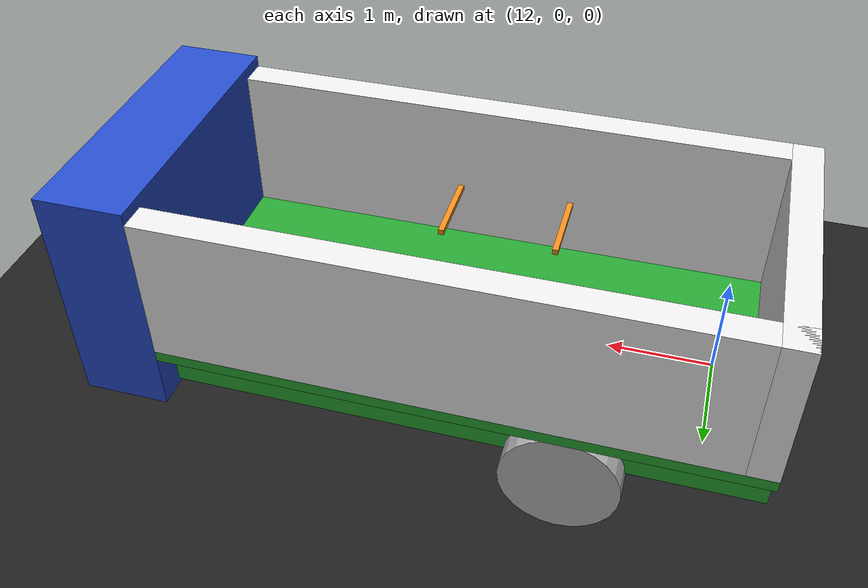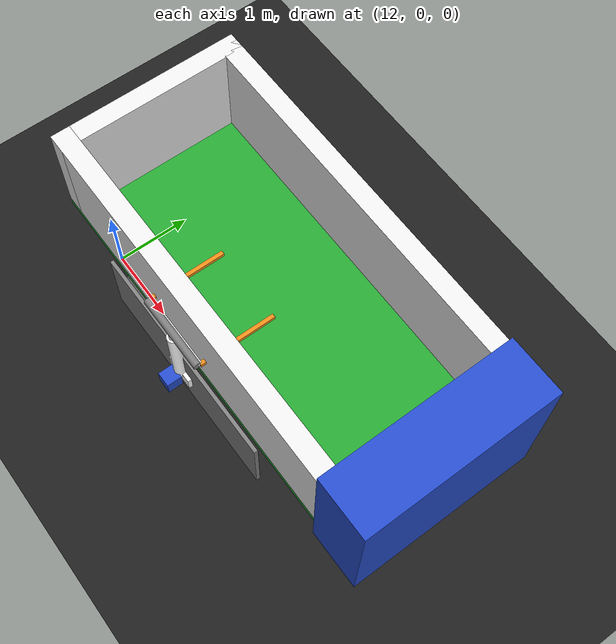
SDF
<sdf version="1.10">
 <world name="gazebo_world">
  <physics name="1ms" type="ignored">
   <max_step_size>0.001</max_step_size>
   <real_time_factor>1.0</real_time_factor>
  </physics>
  <plugin filename="gz-sim-physics-system" name="gz::sim::systems::Physics"/>
  <plugin filename="gz-sim-sensors-system" name="gz::sim::systems::Sensors">
   <render_engine>ogre2</render_engine>
  </plugin>
  <plugin filename="gz-sim-user-commands-system" name="gz::sim::systems::UserCommands"/>
  <plugin filename="gz-sim-scene-broadcaster-system" name="gz::sim::systems::SceneBroadcaster"/>
  <spherical_coordinates>
   <surface_model>EARTH_WGS84</surface_model>
   <world_frame_orientation>ENU</world_frame_orientation>
   <latitude_deg>-22.986687</latitude_deg>
   <longitude_deg>-43.202501</longitude_deg>
   <elevation>0</elevation>
   <heading_deg>0</heading_deg>
  </spherical_coordinates>
  <model name="ground_plane">
   <static>true</static>
   <link name="road">
    <pose>21.5 -6 0 0 0 0</pose>
    <collision name="road_collision"><geometry><plane><normal>0 0 1</normal></plane></geometry></collision>
    <visual name="road_visual">
     <geometry><plane><normal>0 0 1</normal><size>49 38</size></plane></geometry>
     <material>
      <script><uri>file://media/materials/scripts/gazebo.material</uri><name>Gazebo/Black</name></script>
     </material>
    </visual>
   </link>
   <link name="main_concrete">
    <pose>22.5 -9.5 0 0 0 0</pose>
    <collision name="main_concrete_collision"><geometry><box><size>29 15 0.1</size></box></geometry></collision>
    <visual name="main_concrete_visual">
     <geometry><box><size>29 15 0.1</size></box></geometry>
     <material>
      <script><uri>file://media/materials/scripts/gazebo.material</uri><name>Gazebo/Gray</name></script>
     </material>
    </visual>
   </link>
   <link name="left_concrete">
    <pose>21.5 9.5 0 0 0 0</pose>
    <collision name="left_concrete_collision"><geometry><box><size>49 7 0.1</size></box></geometry></collision>
    <visual name="left_concrete_visual">
     <geometry><box><size>49 7 0.1</size></box></geometry>
     <material>
      <script><uri>file://media/materials/scripts/gazebo.material</uri><name>Gazebo/Gray</name></script>
     </material>
    </visual>
   </link>
   <link name="bottom_concrete">
    <pose>-1.5 -15 0 0 0 0</pose>
    <collision name="bottom_concrete_collision"><geometry><box><size>3 26 0.1</size></box></geometry></collision>
    <visual name="bottom_concrete_visual">
     <geometry><box><size>3 26 0.1</size></box></geometry>
     <material>
      <script><uri>file://media/materials/scripts/gazebo.material</uri><name>Gazebo/Gray</name></script>
     </material>
    </visual>
   </link>
  </model>
  <include><uri>model://garbage_truck</uri><pose>14 1 0 0 0 0</pose></include>
  <plugin filename="gz-sim-triggered-publisher-system" name="gz::sim::systems::TriggeredPublisher">
   <input type="gz.msgs.Int32" topic="/keyboard/keypress"><match field="data">16777235</match></input>
   <output type="gz.msgs.Twist" topic="/cmd_vel">linear: {x: 5.0}, angular: {z: 0.0}</output>
  </plugin>
  <plugin filename="gz-sim-triggered-publisher-system" name="gz::sim::systems::TriggeredPublisher">
   <input type="gz.msgs.Int32" topic="/keyboard/keypress"><match field="data">16777237</match></input>
   <output type="gz.msgs.Twist" topic="/cmd_vel">linear: {x: -5.0}, angular: {z: 0.0}</output>
  </plugin>
  <plugin filename="gz-sim-triggered-publisher-system" name="gz::sim::systems::TriggeredPublisher">
   <input type="gz.msgs.Int32" topic="/keyboard/keypress"><match field="data">16777236</match></input>
   <output type="gz.msgs.Twist" topic="/cmd_vel">linear: {x: 0.0}, angular: {z: -5.0}</output>
  </plugin>
  <plugin filename="gz-sim-triggered-publisher-system" name="gz::sim::systems::TriggeredPublisher">
   <input type="gz.msgs.Int32" topic="/keyboard/keypress"><match field="data">16777234</match></input>
   <output type="gz.msgs.Twist" topic="/cmd_vel">linear: {x: 0.0}, angular: {z: 5.0}</output>
  </plugin>
  <plugin filename="gz-sim-triggered-publisher-system" name="gz::sim::systems::TriggeredPublisher">
   <input type="gz.msgs.Int32" topic="/keyboard/keypress"><match field="data">83</match></input>
   <output type="gz.msgs.Twist" topic="/cmd_vel">linear: {x: 0.0}, angular: {z: 0.0}</output>
  </plugin>
 </world>
</sdf>

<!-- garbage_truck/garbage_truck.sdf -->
<sdf version="1.10">

  <model name="garbage_truck">
    <static>false</static>

    <include>
            <uri>model://garbagebot_arm</uri>
            <pose>0 -1.3 0.5 0 0 3.14159</pose>  <!-- x y z roll pitch yaw -->
    </include>

    <joint name='right_to_garbagebot_arm_base_link' type='fixed'>
        <pose relative_to='right'>0 0 0 0 0 0</pose>
        <parent>right</parent>
        <child>garbagebot_arm::base_link</child>
    </joint>

    <!-- Chassis -->
    <link name="chassis">
      <pose>0 0 0.8 0 0 0</pose>
      <inertial>
        <mass>1000</mass>
        <inertia>
          <ixx>500</ixx> <iyy>1200</iyy> <izz>1000</izz>
          <ixy>0</ixy> <ixz>0</ixz> <iyz>0</iyz>
        </inertia>
      </inertial>
      <collision name="chassis_collision">
        <geometry>
          <box>
            <size>5 2 0.6</size>
          </box>
        </geometry>
      </collision>
      <visual name="chassis_visual">
        <geometry>
          <box>
            <size>5 2 0.5</size>
          </box>
        </geometry>
        <material>
          <script>
            <uri>file://media/materials/scripts/gazebo.material</uri>
            <name>Gazebo/Green</name>
          </script>
        </material>
      </visual>

      <!-- IMU Sensor -->
      <sensor name="imu_sensor" type="imu">
        <always_on>1</always_on>
        <update_rate>50</update_rate>
        <visualize>true</visualize>
        <topic>imu</topic>
      </sensor>

      <!-- GPS Sensor -->
      <sensor name="gps_sensor" type="navsat">
        <always_on>true</always_on>
        <update_rate>50</update_rate>
        <topic>gps</topic>
      </sensor>

    </link>

    <!-- Car Structure -->
    <link name="front">
      <pose>2.875 0 1.5 0 0 0</pose>
      <inertial>
        <mass>1</mass>
        <inertia>
          <ixx>500</ixx> <iyy>1200</iyy> <izz>1000</izz>
          <ixy>0</ixy> <ixz>0</ixz> <iyz>0</iyz>
        </inertia>
      </inertial>
      <collision name="front_collision">
        <geometry>
          <box>
            <size> 0.75 2.5 2</size>
          </box>
        </geometry>
      </collision>
      <visual name="front_visual">
        <geometry>
          <box>
            <size> 0.75 2.5 2</size>
          </box>
        </geometry>
        <material>
          <script>
            <uri>file://media/materials/scripts/gazebo.material</uri>
            <name>Gazebo/Blue</name>
          </script>
        </material>
      </visual>
    </link>

    <joint name="joint_front_and_chasis" type="fixed">
      <parent>chassis</parent>
      <child>front</child>
    </joint>

    <link name="bottom">
      <pose> 0 0 1.05 0 0 0</pose>
      <inertial>
        <mass>1</mass>
        <inertia>
          <ixx>500</ixx> <iyy>1200</iyy> <izz>1000</izz>
          <ixy>0</ixy> <ixz>0</ixz> <iyz>0</iyz>
        </inertia>
      </inertial>
      <collision name="bottom_collision">
        <geometry>
          <box>
            <size> 5 2.5 0.1</size>
          </box>
        </geometry>
      </collision>
      <visual name="bottom_visual">
        <geometry>
          <box>
            <size> 5 2.5 0.1</size>
          </box>
        </geometry>
        <material>
          <script>
            <uri>file://media/materials/scripts/gazebo.material</uri>
            <name>Gazebo/Green</name>
          </script>
        </material>
      </visual>
    </link>

    <joint name="joint_bottom_and_chasis" type="fixed">
      <parent>chassis</parent>
      <child>bottom</child>
    </joint>

    <link name="back">
      <pose> -2.375 0 1.75 0 0 0</pose>
      <inertial>
        <mass>1</mass>
        <inertia>
          <ixx>500</ixx> <iyy>1200</iyy> <izz>1000</izz>
          <ixy>0</ixy> <ixz>0</ixz> <iyz>0</iyz>
        </inertia>
      </inertial>
      <collision name="back_collision">
        <geometry>
          <box>
            <size> 0.25 2.5 1.3</size>
          </box>
        </geometry>
      </collision>
      <visual name="back_visual">
        <geometry>
          <box>
            <size> 0.25 2.5 1.3</size>
          </box>
        </geometry>
        <material>
          <script>
            <uri>file://media/materials/scripts/gazebo.material</uri>
            <name>Gazebo/White</name>
          </script>
        </material>
      </visual>
    </link>

    <joint name="joint_back_and_bottom" type="fixed">
      <parent>bottom</parent>
      <child>back</child>
    </joint>

    <link name="left">
      <pose> 0 1.125 1.75 0 0 0</pose>
      <inertial>
        <mass>1</mass>
        <inertia>
          <ixx>500</ixx> <iyy>1200</iyy> <izz>1000</izz>
          <ixy>0</ixy> <ixz>0</ixz> <iyz>0</iyz>
        </inertia>
      </inertial>
      <collision name="left_collision">
        <geometry>
          <box>
            <size> 5 0.25 1.3</size>
          </box>
        </geometry>
      </collision>
      <visual name="left_visual">
        <geometry>
          <box>
            <size> 5 0.25 1.3</size>
          </box>
        </geometry>
        <material>
          <script>
            <uri>file://media/materials/scripts/gazebo.material</uri>
            <name>Gazebo/White</name>
          </script>
        </material>
      </visual>
    </link>

    <joint name="joint_left_and_bottom" type="fixed">
      <parent>bottom</parent>
      <child>left</child>
    </joint>

    <link name="right">
      <pose> 0 -1.125 1.75 0 0 0</pose>
      <inertial>
        <mass>1</mass>
        <inertia>
          <ixx>500</ixx> <iyy>1200</iyy> <izz>1000</izz>
          <ixy>0</ixy> <ixz>0</ixz> <iyz>0</iyz>
        </inertia>
      </inertial>
      <collision name="right_collision">
        <geometry>
          <box>
            <size> 5 0.25 1.3</size>
          </box>
        </geometry>
      </collision>
      <visual name="right_visual">
        <geometry>
          <box>
            <size> 5 0.25 1.3</size>
          </box>
        </geometry>
        <material>
          <script>
            <uri>file://media/materials/scripts/gazebo.material</uri>
            <name>Gazebo/White</name>
          </script>
        </material>
      </visual>
    </link>

    <joint name="joint_right_and_bottom" type="fixed">
      <parent>bottom</parent>
      <child>right</child>
    </joint>

    <!-- Wheels -->

    <link name="wheel_center_left">
      <pose> -0.9 1.1 0.5 -1.5707 0 0</pose>
      <inertial>
        <mass>1</mass>
      </inertial>
      <collision name="collision">
        <geometry>
          <cylinder>
            <radius>0.5</radius>
            <length>0.25</length>
          </cylinder>
        </geometry>
      </collision>
      <visual name="visual">
        <geometry>
          <cylinder>
            <radius>0.5</radius>
            <length>0.25</length>
          </cylinder>
        </geometry>
      </visual>
    </link>

    <link name="wheel_center_right">
      <pose> -0.9 -1.1 0.5 -1.5707 0 0</pose>
      <inertial>
        <mass>1</mass>
      </inertial>
      <collision name="collision">
        <geometry>
          <cylinder>
            <radius>0.5</radius>
            <length>0.25</length>
          </cylinder>
        </geometry>
      </collision>
      <visual name="visual">
        <geometry>
          <cylinder>
            <radius>0.5</radius>
            <length>0.25</length>
          </cylinder>
        </geometry>
      </visual>
    </link>

    <!--caster wheel-->
    <frame name="caster_frame" attached_to='chassis'>
        <pose>2 0 -0.3 0 0 0</pose>
    </frame>

    <link name='caster'>
        <pose relative_to='caster_frame'/>
        <inertial>
            <mass>1</mass>
            <inertia>
                <ixx>0.016</ixx>
                <ixy>0</ixy>
                <ixz>0</ixz>
                <iyy>0.016</iyy>
                <iyz>0</iyz>
                <izz>0.016</izz>
            </inertia>
        </inertial>
        <visual name='visual'>
            <geometry>
                <sphere>
                    <radius>0.5</radius>
                </sphere>
            </geometry>
            <material>
                <ambient>0.0 0.0 0.0 1</ambient>
                <diffuse>0.0 0.0 0.0 1</diffuse>
                <specular>0.0 0.0 0.0 1</specular>
            </material>
        </visual>
        <collision name='collision'>
            <geometry>
                <sphere>
                    <radius>0.5</radius>
                </sphere>
            </geometry>
        </collision>
    </link>

    <!-- Wheel joints -->

    <joint name="joint_wheel_center_left" type="revolute">
      <parent>chassis</parent>
      <child>wheel_center_left</child>
      <axis>
        <xyz expressed_in='__model__'>0 1 0</xyz>
        <limit>
          <lower>-1.79769e+308</lower>
          <upper>1.79769e+308</upper>
          <effort>10000</effort>
          <velocity>100.0</velocity>
        </limit>
      </axis>
    </joint>

    <joint name="joint_wheel_center_right" type="revolute">
      <parent>chassis</parent>
      <child>wheel_center_right</child>
      <axis>
        <xyz expressed_in='__model__'>0 1 0</xyz>
        <limit>
          <lower>-1.79769e+308</lower>
          <upper>1.79769e+308</upper>
          <effort>10000</effort>
          <velocity>100.0</velocity>
        </limit>
      </axis>
    </joint>

    <joint name='caster_wheel' type='ball'>
        <parent>chassis</parent>
        <child>caster</child>
    </joint>

  <!-- Differential Driving -->
  <plugin
      filename="gz-sim-diff-drive-system"
      name="gz::sim::systems::DiffDrive">
      <left_joint>joint_wheel_center_left</left_joint>
      <right_joint>joint_wheel_center_right</right_joint>
      <wheel_separation>2.2</wheel_separation>
      <wheel_radius>0.5</wheel_radius>
      <odom_publish_frequency>1</odom_publish_frequency>
      <topic>cmd_vel</topic>
      <max_torque>10000.0</max_torque>
      <max_velocity>100.0</max_velocity>
  </plugin>

  <!-- IMU Sensor -->
  <plugin filename="gz-sim-imu-system"
        name="gz::sim::systems::Imu">
  </plugin>

  <!-- GPS Sensor -->
  <plugin filename="gz-sim-navsat-system"
        name="gz::sim::systems::NavSat">
  </plugin>

  <plugin
    filename="gz-sim-joint-position-controller-system"
    name="gz::sim::systems::JointPositionController">
    <joint_name>garbagebot_arm::link1_to_link2</joint_name>
    <topic>joint_1_prismatic_pos</topic>
    <p_gain>3000</p_gain>
    <i_gain>100</i_gain>
    <d_gain>1000</d_gain>
    <i_max>1000</i_max>
    <i_min>-1000</i_min>
    <cmd_max>50000</cmd_max>
    <cmd_min>-50000</cmd_min>
    <initial_position>0</initial_position>
  </plugin>

  <plugin
    filename="gz-sim-joint-position-controller-system"
    name="gz::sim::systems::JointPositionController">
    <joint_name>garbagebot_arm::link2_to_link3</joint_name>
    <topic>joint_2_revolute_pos</topic>
    <p_gain>3000</p_gain>
    <i_gain>100</i_gain>
    <d_gain>1000</d_gain>
    <i_max>1000</i_max>
    <i_min>-1000</i_min>
    <cmd_max>50000</cmd_max>
    <cmd_min>-50000</cmd_min>
    <initial_position>0</initial_position>
  </plugin>

  <plugin
    filename="gz-sim-joint-position-controller-system"
    name="gz::sim::systems::JointPositionController">
    <joint_name>garbagebot_arm::link3_to_link4</joint_name>
    <topic>joint_3_prismatic_pos</topic>
    <p_gain>3000</p_gain>
    <i_gain>100</i_gain>
    <d_gain>1000</d_gain>
    <i_max>1000</i_max>
    <i_min>-1000</i_min>
    <cmd_max>50000</cmd_max>
    <cmd_min>-50000</cmd_min>
    <initial_position>0</initial_position>
  </plugin>

  <plugin
    filename="gz-sim-joint-position-controller-system"
    name="gz::sim::systems::JointPositionController">
    <joint_name>garbagebot_arm::link4_to_link6_flange</joint_name>
    <topic>joint_4_revolute_pos</topic>
    <p_gain>300</p_gain>
    <i_gain>10</i_gain>
    <d_gain>100</d_gain>
    <i_max>100</i_max>
    <i_min>-100</i_min>
    <cmd_max>5000</cmd_max>
    <cmd_min>-5000</cmd_min>
    <initial_position>0</initial_position>
  </plugin>

  <plugin
    filename="gz-sim-joint-position-controller-system"
    name="gz::sim::systems::JointPositionController">
    <joint_name>garbagebot_arm::gripper_base_to_gripper_left</joint_name>
    <topic>joint_5_prismatic_pos</topic>
    <p_gain>3000</p_gain>
    <i_gain>100</i_gain>
    <d_gain>1000</d_gain>
    <i_max>1000</i_max>
    <i_min>-1000</i_min>
    <cmd_max>50000</cmd_max>
    <cmd_min>-50000</cmd_min>
    <initial_position>0</initial_position>
  </plugin>

  <plugin
    filename="gz-sim-joint-position-controller-system"
    name="gz::sim::systems::JointPositionController">
    <joint_name>garbagebot_arm::gripper_base_to_gripper_right</joint_name>
    <topic>joint_6_prismatic_pos</topic>
    <p_gain>3000</p_gain>
    <i_gain>100</i_gain>
    <d_gain>1000</d_gain>
    <i_max>1000</i_max>
    <i_min>-1000</i_min>
    <cmd_max>50000</cmd_max>
    <cmd_min>-50000</cmd_min>
    <initial_position>0</initial_position>
  </plugin>

  <link name="rgbd_camera_link">
    <pose>0 -1.5 0.5 0 0 -1.5707</pose>
    <inertial>
      <mass>0.1</mass>
      <inertia>
        <ixx>0.000166667</ixx>
        <iyy>0.000166667</iyy>
        <izz>0.000166667</izz>
      </inertia>
    </inertial>
    <collision name="collision">
      <geometry>
        <box>
          <size>0.2 0.2 0.2</size>
        </box>
      </geometry>
    </collision>
    <visual name="visual">
      <geometry>
        <box>
          <size>0.2 0.2 0.2</size>
        </box>
      </geometry>
      <material>
        <script>
          <uri>file://media/materials/scripts/gazebo.material</uri>
          <name>Gazebo/Blue</name>
        </script>
      </material>
    </visual>
    <sensor name="rgbd_camera" type="rgbd_camera">
      <camera>
        <horizontal_fov>1.047</horizontal_fov>
        <image>
          <width>320</width>
          <height>240</height>
        </image>
        <clip>
          <near>0.1</near>
          <far>100</far>
        </clip>
      </camera>
      <always_on>1</always_on>
      <update_rate>30</update_rate>
      <visualize>true</visualize>
      <topic>rgbd_camera</topic>
      <enable_metrics>true</enable_metrics>
    </sensor>
  </link>

  <joint name='right_to_rgbd_camera_link' type='fixed'>
      <pose relative_to='right'>0 0 0 0 0 0</pose>
      <parent>right</parent>
      <child>rgbd_camera_link</child>
  </joint>

  </model>
</sdf>

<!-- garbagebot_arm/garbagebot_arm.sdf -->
<sdf version='1.11'>
  <model name='garbagebot_arm'>
    <link name='base_link'>
      <pose relative_to='__model__'>0 0 0 0 0 0</pose>
      <inertial>
        <pose>0 0 0 0 0 0</pose>
        <mass>50</mass>
        <inertia>
          <ixx>0.01</ixx> <iyy>0.01</iyy> <izz>0.01</izz>
          <ixy>0.0</ixy> <ixz>0.0</ixz> <iyz>0.0</iyz>
        </inertia>
      </inertial>
      <collision name='base_link_collision'>
        <pose>0 0 0 0 0 0</pose>
        <geometry>
          <box>
            <size>3 0.050000000000000003 1</size>
          </box>
        </geometry>
        <surface>
          <contact>
            <ode/>
          </contact>
          <friction>
            <ode/>
          </friction>
        </surface>
      </collision>
      <collision name='base_link_fixed_joint_lump__link1_collision_1'>
        <pose>0 0 0 0 0 0</pose>
        <geometry>
          <box>
            <size>3 0.050000000000000003 1</size>
          </box>
        </geometry>
        <surface>
          <contact>
            <ode/>
          </contact>
          <friction>
            <ode/>
          </friction>
        </surface>
      </collision>
      <visual name='base_link_visual'>
        <pose>0 0 0 0 0 0</pose>
        <geometry>
          <box>
            <size>3 0.050000000000000003 1</size>
          </box>
        </geometry>
        <material>
          <ambient>0.5 0.5 0.5 1</ambient>
          <diffuse>0.5 0.5 0.5 1</diffuse>
          <specular>0.5 0.5 0.5 1</specular>
        </material>
      </visual>
      <visual name='base_link_fixed_joint_lump__link1_visual_1'>
        <pose>0 0 0 0 0 0</pose>
        <geometry>
          <box>
            <size>3 0.050000000000000003 1</size>
          </box>
        </geometry>
        <material>
          <ambient>0.5 0.5 0.5 1</ambient>
          <diffuse>0.5 0.5 0.5 1</diffuse>
          <specular>0.5 0.5 0.5 1</specular>
        </material>
      </visual>
    </link>
    <joint name='link1_to_link2' type='prismatic'>
      <pose relative_to='base_link'>0 0 0 0 0 0</pose>
      <parent>base_link</parent>
      <child>link2</child>
      <axis>
        <xyz>1 0 0</xyz>
        <limit>
          <lower>-1</lower>
          <upper>1</upper>
          <effort>50000</effort>
          <velocity>4.0</velocity>
        </limit>
        <dynamics>
          <damping>1</damping>
          <friction>1</friction>
          <spring_reference>0</spring_reference>
          <spring_stiffness>0</spring_stiffness>
        </dynamics>
      </axis>
    </joint>
    <link name='link2'>
      <pose relative_to='link1_to_link2'>0 0 0 0 0 0</pose>
      <inertial>
        <pose>0 0 0 0 0 0</pose>
        <mass>50</mass>
        <inertia>
          <ixx>0.01</ixx> <iyy>0.01</iyy> <izz>0.01</izz>
          <ixy>0.0</ixy> <ixz>0.0</ixz> <iyz>0.0</iyz>
        </inertia>
      </inertial>
      <collision name='link2_collision'>
        <pose>0 0.050000000000000003 0 0 0 0</pose>
        <geometry>
          <box>
            <size>0.40000000000000002 0.050000000000000003 0.20000000000000001</size>
          </box>
        </geometry>
        <surface>
          <contact>
            <ode/>
          </contact>
          <friction>
            <ode/>
          </friction>
        </surface>
      </collision>
      <visual name='link2_visual'>
        <pose>0 0.050000000000000003 0 0 0 0</pose>
        <geometry>
          <box>
            <size>0.40000000000000002 0.050000000000000003 0.20000000000000001</size>
          </box>
        </geometry>
        <material>
          <ambient>1 1 1 1</ambient>
          <diffuse>1 1 1 1</diffuse>
          <specular>1 1 1 1</specular>
        </material>
      </visual>
    </link>
    <joint name='link2_to_link3' type='revolute'>
      <pose relative_to='link2'>0 0.050000000000000003 0 1.5707963267948959 0 0</pose>
      <parent>link2</parent>
      <child>link3</child>
      <axis>
        <xyz>-1 0 0</xyz>
        <limit>
          <lower>0</lower>
          <upper>1.571</upper>
          <effort>50000</effort>
          <velocity>10.0</velocity>
        </limit>
        <dynamics>
          <damping>1</damping>
          <friction>0.5</friction>
          <spring_reference>0</spring_reference>
          <spring_stiffness>0</spring_stiffness>
        </dynamics>
      </axis>
    </joint>
    <link name='link3'>
      <pose relative_to='link2_to_link3'>0 0 0 0 0 0</pose>
      <inertial>
        <pose>0 0 0 0 0 0</pose>
        <mass>30</mass>
        <inertia>
          <ixx>0.01</ixx> <iyy>0.01</iyy> <izz>0.01</izz>
          <ixy>0.0</ixy> <ixz>0.0</ixz> <iyz>0.0</iyz>
        </inertia>
      </inertial>
      <collision name='link3_collision'>
        <pose>0 0.5 0 -1.5707963267948959 0 0</pose>
        <geometry>
          <cylinder>
            <length>1</length>
            <radius>0.080000000000000002</radius>
          </cylinder>
        </geometry>
        <surface>
          <contact>
            <ode/>
          </contact>
          <friction>
            <ode/>
          </friction>
        </surface>
      </collision>
      <visual name='link3_visual'>
        <pose>0 0.5 0 -1.5707963267948959 0 0</pose>
        <geometry>
          <cylinder>
            <length>1</length>
            <radius>0.080000000000000002</radius>
          </cylinder>
        </geometry>
        <material>
          <ambient>1 1 1 1</ambient>
          <diffuse>1 1 1 1</diffuse>
          <specular>1 1 1 1</specular>
        </material>
      </visual>
    </link>
    <joint name='link3_to_link4' type='prismatic'>
      <pose relative_to='link3'>0 0.10000000000000001 0 0 0 0</pose>
      <parent>link3</parent>
      <child>link4</child>
      <axis>
        <xyz>0 1 0</xyz>
        <limit>
          <lower>0</lower>
          <upper>0.80000000000000004</upper>
          <effort>50000</effort>
          <velocity>2.0</velocity>
        </limit>
        <dynamics>
          <damping>0.5</damping>
          <friction>0.5</friction>
          <spring_reference>0</spring_reference>
          <spring_stiffness>0</spring_stiffness>
        </dynamics>
      </axis>
    </joint>
    <link name='link4'>
      <pose relative_to='link3_to_link4'>0 0 0 0 0 0</pose>
      <inertial>
        <pose>0 0 0 0 0 0</pose>
        <mass>5</mass>
        <inertia>
          <ixx>0.01</ixx> <iyy>0.01</iyy> <izz>0.01</izz>
          <ixy>0.0</ixy> <ixz>0.0</ixz> <iyz>0.0</iyz>
        </inertia>
      </inertial>
      <collision name='link4_collision'>
        <pose>0 0.5 0 -1.570796326794897 -1.5707963267948966 0</pose>
        <geometry>
          <cylinder>
            <length>1</length>
            <radius>0.050000000000000003</radius>
          </cylinder>
        </geometry>
        <surface>
          <contact>
            <ode/>
          </contact>
          <friction>
            <ode/>
          </friction>
        </surface>
      </collision>
      <visual name='link4_visual'>
        <pose>0 0.5 0 -1.570796326794897 -1.5707963267948966 0</pose>
        <geometry>
          <cylinder>
            <length>1</length>
            <radius>0.050000000000000003</radius>
          </cylinder>
        </geometry>
        <material>
          <ambient>1 1 1 1</ambient>
          <diffuse>1 1 1 1</diffuse>
          <specular>1 1 1 1</specular>
        </material>
      </visual>
    </link>
    <joint name='link4_to_link6_flange' type='revolute'>
      <pose relative_to='link4'>0 1 0 0 0 0</pose>
      <parent>link4</parent>
      <child>link6_flange</child>
      <axis>
        <xyz>-1 0 0</xyz>
        <limit>
          <lower>0</lower>
          <upper>2</upper>
          <effort>5000</effort>
          <velocity>3.0</velocity>
        </limit>
        <dynamics>
          <damping>0.1</damping>
          <friction>0.1</friction>
          <spring_reference>0</spring_reference>
          <spring_stiffness>0</spring_stiffness>
        </dynamics>
      </axis>
    </joint>
    <link name='link6_flange'>
      <pose relative_to='link4_to_link6_flange'>0 0 0 0 0 0</pose>
      <inertial>
        <pose>0 0 0.022666666666666668 0 0 0</pose>
        <mass>10</mass>
        <inertia>
          <ixx>0.01</ixx> <iyy>0.01</iyy> <izz>0.01</izz>
          <ixy>0.0</ixy> <ixz>0.0</ixz> <iyz>0.0</iyz>
        </inertia>
      </inertial>
      <collision name='link6_flange_collision'>
        <pose>0 0 0 0 -1.5707963267948966 0</pose>
        <geometry>
          <cylinder>
            <length>1</length>
            <radius>0.050000000000000003</radius>
          </cylinder>
        </geometry>
        <surface>
          <contact>
            <ode/>
          </contact>
          <friction>
            <ode/>
          </friction>
        </surface>
      </collision>
      <collision name='link6_flange_fixed_joint_lump__gripper_base_collision_1'>
        <pose>0 0 0.034000000000000002 1.579 0 0</pose>
        <geometry>
          <box>
            <size>1 0.050000000000000003 0.050000000000000003</size>
          </box>
        </geometry>
        <surface>
          <contact>
            <ode/>
          </contact>
          <friction>
            <ode/>
          </friction>
        </surface>
      </collision>
      <visual name='link6_flange_visual'>
        <pose>0 0 0 0 -1.5707963267948966 0</pose>
        <geometry>
          <cylinder>
            <length>1</length>
            <radius>0.050000000000000003</radius>
          </cylinder>
        </geometry>
        <material>
          <ambient>0.5 0.5 0.5 1</ambient>
          <diffuse>0.5 0.5 0.5 1</diffuse>
          <specular>0.5 0.5 0.5 1</specular>
        </material>
      </visual>
      <visual name='link6_flange_fixed_joint_lump__gripper_base_visual_1'>
        <pose>0 0 0.034000000000000002 1.579 0 0</pose>
        <geometry>
          <box>
            <size>1 0.050000000000000003 0.050000000000000003</size>
          </box>
        </geometry>
        <material>
          <ambient>1 1 1 1</ambient>
          <diffuse>1 1 1 1</diffuse>
          <specular>1 1 1 1</specular>
        </material>
      </visual>
    </link>
    <joint name='gripper_base_to_gripper_left' type='prismatic'>
      <pose relative_to='link6_flange'>0 0 0.034000000000000002 1.579 0 0</pose>
      <parent>link6_flange</parent>
      <child>gripper_left</child>
      <axis>
        <xyz>1 0 0</xyz>
        <limit>
          <lower>0</lower>
          <upper>0.5</upper>
          <effort>50000</effort>
          <velocity>4.0</velocity>
        </limit>
        <dynamics>
          <damping>1</damping>
          <friction>1</friction>
          <spring_reference>0</spring_reference>
          <spring_stiffness>0</spring_stiffness>
        </dynamics>
      </axis>
    </joint>
    <link name='gripper_left'>
      <pose relative_to='gripper_base_to_gripper_left'>0 0 0 0 0 0</pose>
      <inertial>
        <pose>0 0 0 0 0 0</pose>
        <mass>10</mass>
        <inertia>
          <ixx>0.01</ixx> <iyy>0.01</iyy> <izz>0.01</izz>
          <ixy>0.0</ixy> <ixz>0.0</ixz> <iyz>0.0</iyz>
        </inertia>
      </inertial>
      <collision name='gripper_left_collision'>
        <pose>-0.5 0.5 0 0 0 0</pose>
        <geometry>
          <box>
            <size>0.050000000000000003 1 0.050000000000000003</size>
          </box>
        </geometry>
        <surface>
          <friction>
            <ode>
              <mu>50.0</mu>
              <mu2>50.0</mu2>
            </ode>
          </friction>
          <contact>
            <ode>
              <soft_cfm>0.5</soft_cfm>
              <soft_erp>0.2</soft_erp>
            </ode>
          </contact>
        </surface>
      </collision>
      <visual name='gripper_left_visual'>
        <pose>-0.5 0.5 0 0 0 0</pose>
        <geometry>
          <box>
            <size>0.050000000000000003 1 0.050000000000000003</size>
          </box>
        </geometry>
        <material>
          <script>
            <uri>file://media/materials/scripts/gazebo.material</uri>
            <name>Gazebo/Orange</name>
          </script>
        </material>
      </visual>
    </link>
    <joint name='gripper_base_to_gripper_right' type='prismatic'>
      <pose relative_to='link6_flange'>0 0 0.034000000000000002 1.579 0 0</pose>
      <parent>link6_flange</parent>
      <child>gripper_right</child>
      <axis>
        <xyz>-1 0 0</xyz>
        <limit>
          <lower>0</lower>
          <upper>0.5</upper>
          <effort>50000</effort>
          <velocity>4.0</velocity>
        </limit>
        <dynamics>
          <damping>1</damping>
          <friction>1</friction>
          <spring_reference>0</spring_reference>
          <spring_stiffness>0</spring_stiffness>
        </dynamics>
      </axis>
    </joint>
    <link name='gripper_right'>
      <pose relative_to='gripper_base_to_gripper_right'>0 0 0 0 0 0</pose>
      <inertial>
        <pose>0 0 0 0 0 0</pose>
        <mass>10</mass>
        <inertia>
          <ixx>0.01</ixx> <iyy>0.01</iyy> <izz>0.01</izz>
          <ixy>0.0</ixy> <ixz>0.0</ixz> <iyz>0.0</iyz>
        </inertia>
      </inertial>
      <collision name='gripper_right_collision'>
        <pose>0.5 0.5 0 0 0 0</pose>
        <geometry>
          <box>
            <size>0.050000000000000003 1 0.050000000000000003</size>
          </box>
        </geometry>
        <surface>
          <friction>
            <ode>
              <mu>50.0</mu>
              <mu2>50.0</mu2>
            </ode>
          </friction>
          <contact>
            <ode>
              <soft_cfm>0.5</soft_cfm>
              <soft_erp>0.2</soft_erp>
            </ode>
          </contact>
        </surface>
      </collision>
      <visual name='gripper_right_visual'>
        <pose>0.5 0.5 0 0 0 0</pose>
        <geometry>
          <box>
            <size>0.050000000000000003 1 0.050000000000000003</size>
          </box>
        </geometry>
        <material>
          <script>
            <uri>file://media/materials/scripts/gazebo.material</uri>
            <name>Gazebo/Orange</name>
          </script>
        </material>
      </visual>
    </link>
    <frame name='base_link_to_link1' attached_to='base_link'>
      <pose>0 0 0 0 0 0</pose>
    </frame>
    <frame name='link1' attached_to='base_link_to_link1'>
      <pose>0 0 0 0 0 0</pose>
    </frame>
    <frame name='link6_flange_to_gripper_base' attached_to='link6_flange'>
      <pose>0 0 0.034000000000000002 1.579 0 0</pose>
    </frame>
    <frame name='gripper_base' attached_to='link6_flange_to_gripper_base'>
      <pose>0 0 0 0 0 0</pose>
    </frame>

  <plugin
    filename="gz-sim-joint-state-publisher-system"
    name="gz::sim::systems::JointStatePublisher">
    <topic>joint_states</topic>
    <update_rate>5</update_rate>
  </plugin>
  </model>
</sdf>
